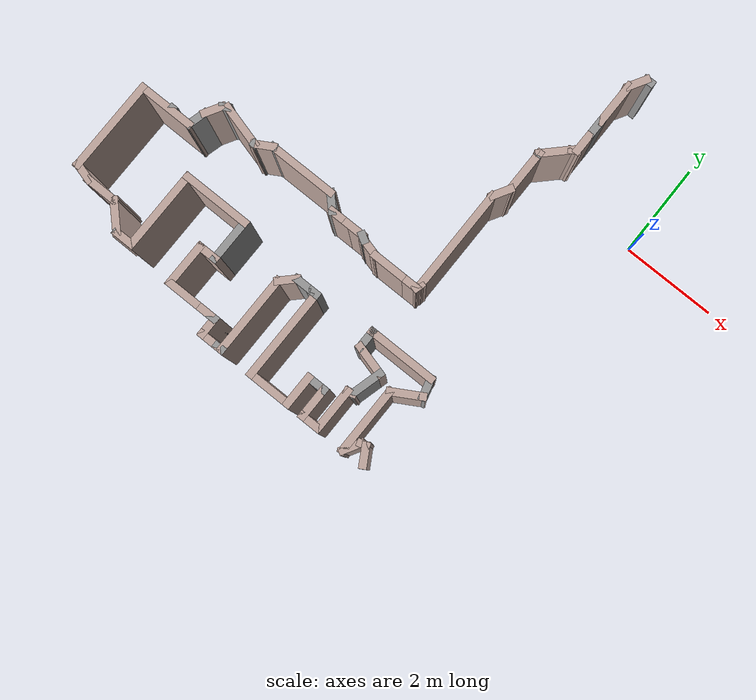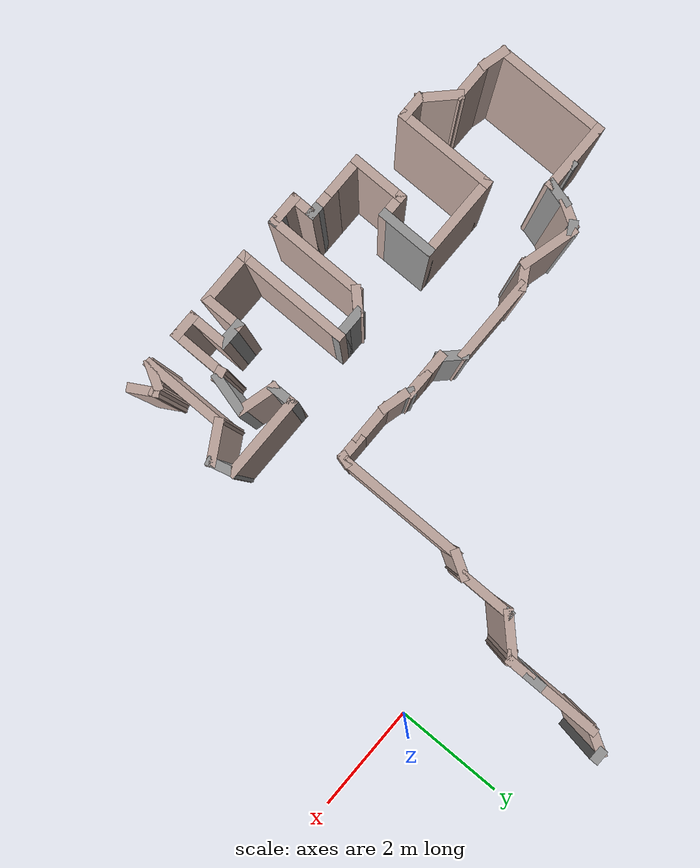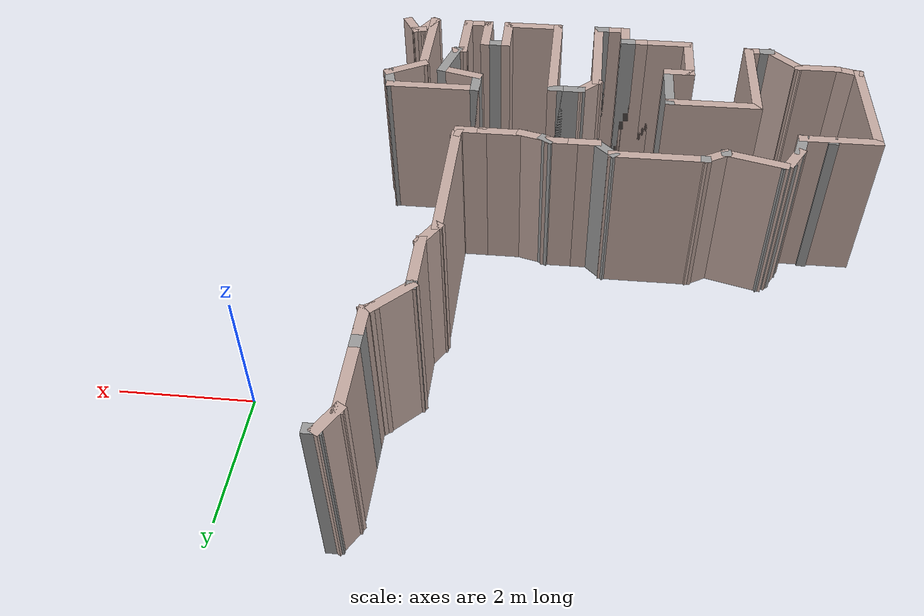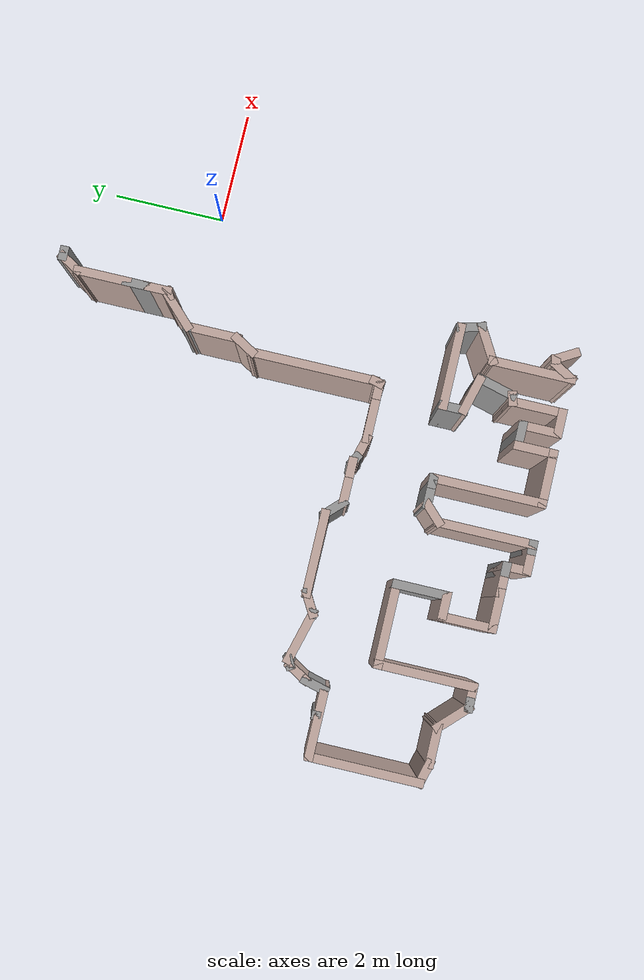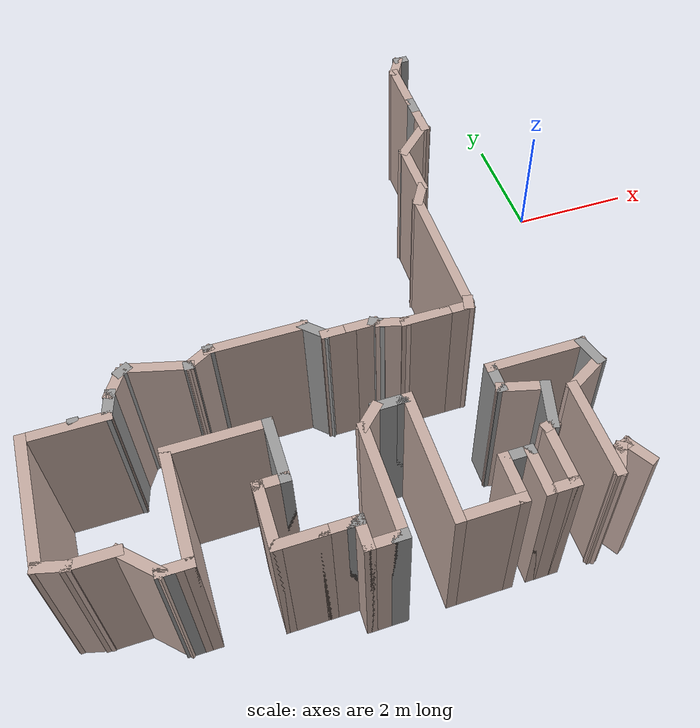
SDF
<sdf version="1.6">
 <model name="map_76">
  <pose>-2.40102 -2.21939 0 0 -0 0</pose>
  <link name="Wall_10">
   <collision name="Wall_10_Collision">
    <geometry><box><size>0.5 0.15 2.5</size></box></geometry>
    <pose>0 0 1.25 0 -0 0</pose>
   </collision>
   <visual name="Wall_10_Visual">
    <pose>0 0 1.25 0 -0 0</pose>
    <geometry><box><size>0.5 0.15 2.5</size></box></geometry>
    <material>
     <script><uri>file://media/materials/scripts/gazebo.material</uri><name>Gazebo/Grey</name></script>
     <ambient>0.760784 0.662745 0.627451 1</ambient>
    </material>
    <meta><layer>0</layer></meta>
   </visual>
   <pose>0.499907 2.74927 0 0 -0 -1.5708</pose>
  </link>
  <link name="Wall_11">
   <collision name="Wall_11_Collision">
    <geometry><box><size>0.25 0.15 2.5</size></box></geometry>
    <pose>0 0 1.25 0 -0 0</pose>
   </collision>
   <visual name="Wall_11_Visual">
    <pose>0 0 1.25 0 -0 0</pose>
    <geometry><box><size>0.25 0.15 2.5</size></box></geometry>
    <material>
     <script><uri>file://media/materials/scripts/gazebo.material</uri><name>Gazebo/Grey</name></script>
     <ambient>0.760784 0.662745 0.627451 1</ambient>
    </material>
    <meta><layer>0</layer></meta>
   </visual>
   <pose>0.456606 2.54927 0 0 -0 -2.61799</pose>
  </link>
  <link name="Wall_12">
   <collision name="Wall_12_Collision">
    <geometry><box><size>0.75 0.15 2.5</size></box></geometry>
    <pose>0 0 1.25 0 -0 0</pose>
   </collision>
   <visual name="Wall_12_Visual">
    <pose>0 0 1.25 0 -0 0</pose>
    <geometry><box><size>0.75 0.15 2.5</size></box></geometry>
    <material>
     <script><uri>file://media/materials/scripts/gazebo.material</uri><name>Gazebo/Grey</name></script>
     <ambient>0.760784 0.662745 0.627451 1</ambient>
    </material>
    <meta><layer>0</layer></meta>
   </visual>
   <pose>0.201173 2.31214 0 0 -0 -2.35619</pose>
  </link>
  <link name="Wall_13">
   <collision name="Wall_13_Collision">
    <geometry><box><size>0.15 0.15 2.5</size></box></geometry>
    <pose>0 0 1.25 0 -0 0</pose>
   </collision>
   <visual name="Wall_13_Visual">
    <pose>0 0 1.25 0 -0 0</pose>
    <geometry><box><size>0.15 0.15 2.5</size></box></geometry>
    <material>
     <script><uri>file://media/materials/scripts/gazebo.material</uri><name>Gazebo/Grey</name></script>
     <ambient>1 1 1 1</ambient>
    </material>
    <meta><layer>0</layer></meta>
   </visual>
   <pose>-0.010959 2.1 0 0 -0 0</pose>
  </link>
  <link name="Wall_14">
   <collision name="Wall_14_Collision">
    <geometry><box><size>1 0.15 2.5</size></box></geometry>
    <pose>0 0 1.25 0 -0 0</pose>
   </collision>
   <visual name="Wall_14_Visual">
    <pose>0 0 1.25 0 -0 0</pose>
    <geometry><box><size>1 0.15 2.5</size></box></geometry>
    <material>
     <script><uri>file://media/materials/scripts/gazebo.material</uri><name>Gazebo/Grey</name></script>
     <ambient>0.760784 0.662745 0.627451 1</ambient>
    </material>
    <meta><layer>0</layer></meta>
   </visual>
   <pose>-0.010959 1.675 0 0 -0 -1.5708</pose>
  </link>
  <link name="Wall_15">
   <collision name="Wall_15_Collision">
    <geometry><box><size>0.5 0.15 2.5</size></box></geometry>
    <pose>0 0 1.25 0 -0 0</pose>
   </collision>
   <visual name="Wall_15_Visual">
    <pose>0 0 1.25 0 -0 0</pose>
    <geometry><box><size>0.5 0.15 2.5</size></box></geometry>
    <material>
     <script><uri>file://media/materials/scripts/gazebo.material</uri><name>Gazebo/Grey</name></script>
     <ambient>0.760784 0.662745 0.627451 1</ambient>
    </material>
    <meta><layer>0</layer></meta>
   </visual>
   <pose>-0.098459 1.09845 0 0 -0 -2.0944</pose>
  </link>
  <link name="Wall_16">
   <collision name="Wall_16_Collision">
    <geometry><box><size>2.25 0.15 2.5</size></box></geometry>
    <pose>0 0 1.25 0 -0 0</pose>
   </collision>
   <visual name="Wall_16_Visual">
    <pose>0 0 1.25 0 -0 0</pose>
    <geometry><box><size>2.25 0.15 2.5</size></box></geometry>
    <material>
     <script><uri>file://media/materials/scripts/gazebo.material</uri><name>Gazebo/Grey</name></script>
     <ambient>0.760784 0.662745 0.627451 1</ambient>
    </material>
    <meta><layer>0</layer></meta>
   </visual>
   <pose>-0.185959 -0.103106 0 0 -0 -1.5708</pose>
  </link>
  <link name="Wall_17">
   <collision name="Wall_17_Collision">
    <geometry><box><size>0.25 0.15 2.5</size></box></geometry>
    <pose>0 0 1.25 0 -0 0</pose>
   </collision>
   <visual name="Wall_17_Visual">
    <pose>0 0 1.25 0 -0 0</pose>
    <geometry><box><size>0.25 0.15 2.5</size></box></geometry>
    <material>
     <script><uri>file://media/materials/scripts/gazebo.material</uri><name>Gazebo/Grey</name></script>
     <ambient>0.760784 0.662745 0.627451 1</ambient>
    </material>
    <meta><layer>0</layer></meta>
   </visual>
   <pose>-0.1989 -1.2014 0 0 -0 -1.8326</pose>
  </link>
  <link name="Wall_18">
   <collision name="Wall_18_Collision">
    <geometry><box><size>0.5 0.15 2.5</size></box></geometry>
    <pose>0 0 1.25 0 -0 0</pose>
   </collision>
   <visual name="Wall_18_Visual">
    <pose>0 0 1.25 0 -0 0</pose>
    <geometry><box><size>0.5 0.15 2.5</size></box></geometry>
    <material>
     <script><uri>file://media/materials/scripts/gazebo.material</uri><name>Gazebo/Grey</name></script>
     <ambient>0.760784 0.662745 0.627451 1</ambient>
    </material>
    <meta><layer>0</layer></meta>
   </visual>
   <pose>-0.386841 -1.2497 0 0 -0 3.14159</pose>
  </link>
  <link name="Wall_19">
   <collision name="Wall_19_Collision">
    <geometry><box><size>0.75 0.15 2.5</size></box></geometry>
    <pose>0 0 1.25 0 -0 0</pose>
   </collision>
   <visual name="Wall_19_Visual">
    <pose>0 0 1.25 0 -0 0</pose>
    <geometry><box><size>0.75 0.15 2.5</size></box></geometry>
    <material>
     <script><uri>file://media/materials/scripts/gazebo.material</uri><name>Gazebo/Grey</name></script>
     <ambient>0.760784 0.662745 0.627451 1</ambient>
    </material>
    <meta><layer>0</layer></meta>
   </visual>
   <pose>-0.861841 -1.2497 0 0 -0 3.14159</pose>
  </link>
  <link name="Wall_20">
   <collision name="Wall_20_Collision">
    <geometry><box><size>0.5 0.15 2.5</size></box></geometry>
    <pose>0 0 1.25 0 -0 0</pose>
   </collision>
   <visual name="Wall_20_Visual">
    <pose>0 0 1.25 0 -0 0</pose>
    <geometry><box><size>0.5 0.15 2.5</size></box></geometry>
    <material>
     <script><uri>file://media/materials/scripts/gazebo.material</uri><name>Gazebo/Grey</name></script>
     <ambient>0.760784 0.662745 0.627451 1</ambient>
    </material>
    <meta><layer>0</layer></meta>
   </visual>
   <pose>-1.33088 -1.2044 0 0 -0 2.87979</pose>
  </link>
  <link name="Wall_21">
   <collision name="Wall_21_Collision">
    <geometry><box><size>0.25 0.15 2.5</size></box></geometry>
    <pose>0 0 1.25 0 -0 0</pose>
   </collision>
   <visual name="Wall_21_Visual">
    <pose>0 0 1.25 0 -0 0</pose>
    <geometry><box><size>0.25 0.15 2.5</size></box></geometry>
    <material>
     <script><uri>file://media/materials/scripts/gazebo.material</uri><name>Gazebo/Grey</name></script>
     <ambient>1 1 1 1</ambient>
    </material>
    <meta><layer>0</layer></meta>
   </visual>
   <pose>-1.54322 -1.13411 0 0 -0 2.61799</pose>
  </link>
  <link name="Wall_22">
   <collision name="Wall_22_Collision">
    <geometry><box><size>0.5 0.15 2.5</size></box></geometry>
    <pose>0 0 1.25 0 -0 0</pose>
   </collision>
   <visual name="Wall_22_Visual">
    <pose>0 0 1.25 0 -0 0</pose>
    <geometry><box><size>0.5 0.15 2.5</size></box></geometry>
    <material>
     <script><uri>file://media/materials/scripts/gazebo.material</uri><name>Gazebo/Grey</name></script>
     <ambient>0.760784 0.662745 0.627451 1</ambient>
    </material>
    <meta><layer>0</layer></meta>
   </visual>
   <pose>-1.76152 -1.10911 0 0 -0 3.14159</pose>
  </link>
  <link name="Wall_23">
   <collision name="Wall_23_Collision">
    <geometry><box><size>0.5 0.15 2.5</size></box></geometry>
    <pose>0 0 1.25 0 -0 0</pose>
   </collision>
   <visual name="Wall_23_Visual">
    <pose>0 0 1.25 0 -0 0</pose>
    <geometry><box><size>0.5 0.15 2.5</size></box></geometry>
    <material>
     <script><uri>file://media/materials/scripts/gazebo.material</uri><name>Gazebo/Grey</name></script>
     <ambient>0.760784 0.662745 0.627451 1</ambient>
    </material>
    <meta><layer>0</layer></meta>
   </visual>
   <pose>-2.11152 -1.10911 0 0 -0 3.14159</pose>
  </link>
  <link name="Wall_24">
   <collision name="Wall_24_Collision">
    <geometry><box><size>0.5 0.15 2.5</size></box></geometry>
    <pose>0 0 1.25 0 -0 0</pose>
   </collision>
   <visual name="Wall_24_Visual">
    <pose>0 0 1.25 0 -0 0</pose>
    <geometry><box><size>0.5 0.15 2.5</size></box></geometry>
    <material>
     <script><uri>file://media/materials/scripts/gazebo.material</uri><name>Gazebo/Grey</name></script>
     <ambient>1 1 1 1</ambient>
    </material>
    <meta><layer>0</layer></meta>
   </visual>
   <pose>-2.41026 -0.985368 0 0 -0 2.35619</pose>
  </link>
  <link name="Wall_25">
   <collision name="Wall_25_Collision">
    <geometry><box><size>1.5 0.15 2.5</size></box></geometry>
    <pose>0 0 1.25 0 -0 0</pose>
   </collision>
   <visual name="Wall_25_Visual">
    <pose>0 0 1.25 0 -0 0</pose>
    <geometry><box><size>1.5 0.15 2.5</size></box></geometry>
    <material>
     <script><uri>file://media/materials/scripts/gazebo.material</uri><name>Gazebo/Grey</name></script>
     <ambient>0.760784 0.662745 0.627451 1</ambient>
    </material>
    <meta><layer>0</layer></meta>
   </visual>
   <pose>-3.209 -0.861625 0 0 -0 3.14159</pose>
  </link>
  <link name="Wall_26">
   <collision name="Wall_26_Collision">
    <geometry><box><size>0.15 0.15 2.5</size></box></geometry>
    <pose>0 0 1.25 0 -0 0</pose>
   </collision>
   <visual name="Wall_26_Visual">
    <pose>0 0 1.25 0 -0 0</pose>
    <geometry><box><size>0.15 0.15 2.5</size></box></geometry>
    <material>
     <script><uri>file://media/materials/scripts/gazebo.material</uri><name>Gazebo/Grey</name></script>
     <ambient>1 1 1 1</ambient>
    </material>
    <meta><layer>0</layer></meta>
   </visual>
   <pose>-3.88401 -0.861625 0 0 -0 0</pose>
  </link>
  <link name="Wall_27">
   <collision name="Wall_27_Collision">
    <geometry><box><size>0.5 0.15 2.5</size></box></geometry>
    <pose>0 0 1.25 0 -0 0</pose>
   </collision>
   <visual name="Wall_27_Visual">
    <pose>0 0 1.25 0 -0 0</pose>
    <geometry><box><size>0.5 0.15 2.5</size></box></geometry>
    <material>
     <script><uri>file://media/materials/scripts/gazebo.material</uri><name>Gazebo/Grey</name></script>
     <ambient>0.760784 0.662745 0.627451 1</ambient>
    </material>
    <meta><layer>0</layer></meta>
   </visual>
   <pose>-4.03556 -0.949125 0 0 -0 -2.61799</pose>
  </link>
  <link name="Wall_28">
   <collision name="Wall_28_Collision">
    <geometry><box><size>0.15 0.15 2.5</size></box></geometry>
    <pose>0 0 1.25 0 -0 0</pose>
   </collision>
   <visual name="Wall_28_Visual">
    <pose>0 0 1.25 0 -0 0</pose>
    <geometry><box><size>0.15 0.15 2.5</size></box></geometry>
    <material>
     <script><uri>file://media/materials/scripts/gazebo.material</uri><name>Gazebo/Grey</name></script>
     <ambient>1 1 1 1</ambient>
    </material>
    <meta><layer>0</layer></meta>
   </visual>
   <pose>-4.18711 -1.03662 0 0 -0 0</pose>
  </link>
  <link name="Wall_29">
   <collision name="Wall_29_Collision">
    <geometry><box><size>1 0.15 2.5</size></box></geometry>
    <pose>0 0 1.25 0 -0 0</pose>
   </collision>
   <visual name="Wall_29_Visual">
    <pose>0 0 1.25 0 -0 0</pose>
    <geometry><box><size>1 0.15 2.5</size></box></geometry>
    <material>
     <script><uri>file://media/materials/scripts/gazebo.material</uri><name>Gazebo/Grey</name></script>
     <ambient>0.760784 0.662745 0.627451 1</ambient>
    </material>
    <meta><layer>0</layer></meta>
   </visual>
   <pose>-4.59763 -0.926627 0 0 -0 2.87979</pose>
  </link>
  <link name="Wall_30">
   <collision name="Wall_30_Collision">
    <geometry><box><size>0.25 0.15 2.5</size></box></geometry>
    <pose>0 0 1.25 0 -0 0</pose>
   </collision>
   <visual name="Wall_30_Visual">
    <pose>0 0 1.25 0 -0 0</pose>
    <geometry><box><size>0.25 0.15 2.5</size></box></geometry>
    <material>
     <script><uri>file://media/materials/scripts/gazebo.material</uri><name>Gazebo/Grey</name></script>
     <ambient>1 1 1 1</ambient>
    </material>
    <meta><layer>0</layer></meta>
   </visual>
   <pose>-5.05145 -0.841629 0 0 -0 -2.61799</pose>
  </link>
  <link name="Wall_31">
   <collision name="Wall_31_Collision">
    <geometry><box><size>0.5 0.15 2.5</size></box></geometry>
    <pose>0 0 1.25 0 -0 0</pose>
   </collision>
   <visual name="Wall_31_Visual">
    <pose>0 0 1.25 0 -0 0</pose>
    <geometry><box><size>0.5 0.15 2.5</size></box></geometry>
    <material>
     <script><uri>file://media/materials/scripts/gazebo.material</uri><name>Gazebo/Grey</name></script>
     <ambient>0.760784 0.662745 0.627451 1</ambient>
    </material>
    <meta><layer>0</layer></meta>
   </visual>
   <pose>-5.18225 -1.01818 0 0 -0 -2.0944</pose>
  </link>
  <link name="Wall_33">
   <collision name="Wall_33_Collision">
    <geometry><box><size>0.15 0.15 2.5</size></box></geometry>
    <pose>0 0 1.25 0 -0 0</pose>
   </collision>
   <visual name="Wall_33_Visual">
    <pose>0 0 1.25 0 -0 0</pose>
    <geometry><box><size>0.15 0.15 2.5</size></box></geometry>
    <material>
     <script><uri>file://media/materials/scripts/gazebo.material</uri><name>Gazebo/Grey</name></script>
     <ambient>1 1 1 1</ambient>
    </material>
    <meta><layer>0</layer></meta>
   </visual>
   <pose>-5.78937 -1.46974 0 0 -0 0</pose>
  </link>
  <link name="Wall_37">
   <collision name="Wall_37_Collision">
    <geometry><box><size>0.5 0.15 2.5</size></box></geometry>
    <pose>0 0 1.25 0 -0 0</pose>
   </collision>
   <visual name="Wall_37_Visual">
    <pose>0 0 1.25 0 -0 0</pose>
    <geometry><box><size>0.5 0.15 2.5</size></box></geometry>
    <material>
     <script><uri>file://media/materials/scripts/gazebo.material</uri><name>Gazebo/Grey</name></script>
     <ambient>1 1 1 1</ambient>
    </material>
    <meta><layer>0</layer></meta>
   </visual>
   <pose>-5.31505 -1.33877 0 0 -0 -1.8326</pose>
  </link>
  <link name="Wall_38">
   <collision name="Wall_38_Collision">
    <geometry><box><size>1.25 0.15 2.5</size></box></geometry>
    <pose>0 0 1.25 0 -0 0</pose>
   </collision>
   <visual name="Wall_38_Visual">
    <pose>0 0 1.25 0 -0 0</pose>
    <geometry><box><size>1.25 0.15 2.5</size></box></geometry>
    <material>
     <script><uri>file://media/materials/scripts/gazebo.material</uri><name>Gazebo/Grey</name></script>
     <ambient>0.760784 0.662745 0.627451 1</ambient>
    </material>
    <meta><layer>0</layer></meta>
   </visual>
   <pose>-5.91034 -1.50781 0 0 -0 3.14159</pose>
  </link>
  <link name="Wall_39">
   <collision name="Wall_39_Collision">
    <geometry><box><size>2 0.15 2.5</size></box></geometry>
    <pose>0 0 1.25 0 -0 0</pose>
   </collision>
   <visual name="Wall_39_Visual">
    <pose>0 0 1.25 0 -0 0</pose>
    <geometry><box><size>2 0.15 2.5</size></box></geometry>
    <material>
     <script><uri>file://media/materials/scripts/gazebo.material</uri><name>Gazebo/Grey</name></script>
     <ambient>0.760784 0.662745 0.627451 1</ambient>
    </material>
    <meta><layer>0</layer></meta>
   </visual>
   <pose>-6.46034 -2.43281 0 0 -0 -1.5708</pose>
  </link>
  <link name="Wall_40">
   <collision name="Wall_40_Collision">
    <geometry><box><size>0.5 0.15 2.5</size></box></geometry>
    <pose>0 0 1.25 0 -0 0</pose>
   </collision>
   <visual name="Wall_40_Visual">
    <pose>0 0 1.25 0 -0 0</pose>
    <geometry><box><size>0.5 0.15 2.5</size></box></geometry>
    <material>
     <script><uri>file://media/materials/scripts/gazebo.material</uri><name>Gazebo/Grey</name></script>
     <ambient>0.760784 0.662745 0.627451 1</ambient>
    </material>
    <meta><layer>0</layer></meta>
   </visual>
   <pose>-6.2913 -3.40311 0 0 -0 -0.261799</pose>
  </link>
  <link name="Wall_41">
   <collision name="Wall_41_Collision">
    <geometry><box><size>0.75 0.15 2.5</size></box></geometry>
    <pose>0 0 1.25 0 -0 0</pose>
   </collision>
   <visual name="Wall_41_Visual">
    <pose>0 0 1.25 0 -0 0</pose>
    <geometry><box><size>0.75 0.15 2.5</size></box></geometry>
    <material>
     <script><uri>file://media/materials/scripts/gazebo.material</uri><name>Gazebo/Grey</name></script>
     <ambient>0.760784 0.662745 0.627451 1</ambient>
    </material>
    <meta><layer>0</layer></meta>
   </visual>
   <pose>-5.82227 -3.4484 0 0 -0 0</pose>
  </link>
  <link name="Wall_42">
   <collision name="Wall_42_Collision">
    <geometry><box><size>0.75 0.15 2.5</size></box></geometry>
    <pose>0 0 1.25 0 -0 0</pose>
   </collision>
   <visual name="Wall_42_Visual">
    <pose>0 0 1.25 0 -0 0</pose>
    <geometry><box><size>0.75 0.15 2.5</size></box></geometry>
    <material>
     <script><uri>file://media/materials/scripts/gazebo.material</uri><name>Gazebo/Grey</name></script>
     <ambient>0.760784 0.662745 0.627451 1</ambient>
    </material>
    <meta><layer>0</layer></meta>
   </visual>
   <pose>-5.31013 -3.66053 0 0 -0 -0.785398</pose>
  </link>
  <link name="Wall_43">
   <collision name="Wall_43_Collision">
    <geometry><box><size>0.25 0.15 2.5</size></box></geometry>
    <pose>0 0 1.25 0 -0 0</pose>
   </collision>
   <visual name="Wall_43_Visual">
    <pose>0 0 1.25 0 -0 0</pose>
    <geometry><box><size>0.25 0.15 2.5</size></box></geometry>
    <material>
     <script><uri>file://media/materials/scripts/gazebo.material</uri><name>Gazebo/Grey</name></script>
     <ambient>1 1 1 1</ambient>
    </material>
    <meta><layer>0</layer></meta>
   </visual>
   <pose>-5.048 -3.87266 0 0 -0 0</pose>
  </link>
  <link name="Wall_45">
   <collision name="Wall_45_Collision">
    <geometry><box><size>0.5 0.15 2.5</size></box></geometry>
    <pose>0 0 1.25 0 -0 0</pose>
   </collision>
   <visual name="Wall_45_Visual">
    <pose>0 0 1.25 0 -0 0</pose>
    <geometry><box><size>0.5 0.15 2.5</size></box></geometry>
    <material>
     <script><uri>file://media/materials/scripts/gazebo.material</uri><name>Gazebo/Grey</name></script>
     <ambient>0.760784 0.662745 0.627451 1</ambient>
    </material>
    <meta><layer>0</layer></meta>
   </visual>
   <pose>-4.923 -3.87266 0 0 -0 0</pose>
  </link>
  <link name="Wall_46">
   <collision name="Wall_46_Collision">
    <geometry><box><size>1.75 0.15 2.5</size></box></geometry>
    <pose>0 0 1.25 0 -0 0</pose>
   </collision>
   <visual name="Wall_46_Visual">
    <pose>0 0 1.25 0 -0 0</pose>
    <geometry><box><size>1.75 0.15 2.5</size></box></geometry>
    <material>
     <script><uri>file://media/materials/scripts/gazebo.material</uri><name>Gazebo/Grey</name></script>
     <ambient>0.760784 0.662745 0.627451 1</ambient>
    </material>
    <meta><layer>0</layer></meta>
   </visual>
   <pose>-4.748 -3.07266 0 0 -0 1.5708</pose>
  </link>
  <link name="Wall_47">
   <collision name="Wall_47_Collision">
    <geometry><box><size>1.5 0.15 2.5</size></box></geometry>
    <pose>0 0 1.25 0 -0 0</pose>
   </collision>
   <visual name="Wall_47_Visual">
    <pose>0 0 1.25 0 -0 0</pose>
    <geometry><box><size>1.5 0.15 2.5</size></box></geometry>
    <material>
     <script><uri>file://media/materials/scripts/gazebo.material</uri><name>Gazebo/Grey</name></script>
     <ambient>0.760784 0.662745 0.627451 1</ambient>
    </material>
    <meta><layer>0</layer></meta>
   </visual>
   <pose>-4.073 -2.27266 0 0 -0 0</pose>
  </link>
  <link name="Wall_48">
   <collision name="Wall_48_Collision">
    <geometry><box><size>1 0.15 2.5</size></box></geometry>
    <pose>0 0 1.25 0 -0 0</pose>
   </collision>
   <visual name="Wall_48_Visual">
    <pose>0 0 1.25 0 -0 0</pose>
    <geometry><box><size>1 0.15 2.5</size></box></geometry>
    <material>
     <script><uri>file://media/materials/scripts/gazebo.material</uri><name>Gazebo/Grey</name></script>
     <ambient>1 1 1 1</ambient>
    </material>
    <meta><layer>0</layer></meta>
   </visual>
   <pose>-3.398 -2.69766 0 0 -0 -1.5708</pose>
  </link>
  <link name="Wall_49">
   <collision name="Wall_49_Collision">
    <geometry><box><size>0.5 0.15 2.5</size></box></geometry>
    <pose>0 0 1.25 0 -0 0</pose>
   </collision>
   <visual name="Wall_49_Visual">
    <pose>0 0 1.25 0 -0 0</pose>
    <geometry><box><size>0.5 0.15 2.5</size></box></geometry>
    <material>
     <script><uri>file://media/materials/scripts/gazebo.material</uri><name>Gazebo/Grey</name></script>
     <ambient>0.760784 0.662745 0.627451 1</ambient>
    </material>
    <meta><layer>0</layer></meta>
   </visual>
   <pose>-3.573 -3.12266 0 0 -0 3.14159</pose>
  </link>
  <link name="Wall_50">
   <collision name="Wall_50_Collision">
    <geometry><box><size>1 0.15 2.5</size></box></geometry>
    <pose>0 0 1.25 0 -0 0</pose>
   </collision>
   <visual name="Wall_50_Visual">
    <pose>0 0 1.25 0 -0 0</pose>
    <geometry><box><size>1 0.15 2.5</size></box></geometry>
    <material>
     <script><uri>file://media/materials/scripts/gazebo.material</uri><name>Gazebo/Grey</name></script>
     <ambient>0.760784 0.662745 0.627451 1</ambient>
    </material>
    <meta><layer>0</layer></meta>
   </visual>
   <pose>-3.748 -3.54766 0 0 -0 -1.5708</pose>
  </link>
  <link name="Wall_51">
   <collision name="Wall_51_Collision">
    <geometry><box><size>0.75 0.15 2.5</size></box></geometry>
    <pose>0 0 1.25 0 -0 0</pose>
   </collision>
   <visual name="Wall_51_Visual">
    <pose>0 0 1.25 0 -0 0</pose>
    <geometry><box><size>0.75 0.15 2.5</size></box></geometry>
    <material>
     <script><uri>file://media/materials/scripts/gazebo.material</uri><name>Gazebo/Grey</name></script>
     <ambient>0.760784 0.662745 0.627451 1</ambient>
    </material>
    <meta><layer>0</layer></meta>
   </visual>
   <pose>-3.448 -3.97266 0 0 -0 0</pose>
  </link>
  <link name="Wall_52">
   <collision name="Wall_52_Collision">
    <geometry><box><size>0.5 0.15 2.5</size></box></geometry>
    <pose>0 0 1.25 0 -0 0</pose>
   </collision>
   <visual name="Wall_52_Visual">
    <pose>0 0 1.25 0 -0 0</pose>
    <geometry><box><size>0.5 0.15 2.5</size></box></geometry>
    <material>
     <script><uri>file://media/materials/scripts/gazebo.material</uri><name>Gazebo/Grey</name></script>
     <ambient>0.760784 0.662745 0.627451 1</ambient>
    </material>
    <meta><layer>0</layer></meta>
   </visual>
   <pose>-2.973 -3.97266 0 0 -0 0</pose>
  </link>
  <link name="Wall_53">
   <collision name="Wall_53_Collision">
    <geometry><box><size>0.25 0.15 2.5</size></box></geometry>
    <pose>0 0 1.25 0 -0 0</pose>
   </collision>
   <visual name="Wall_53_Visual">
    <pose>0 0 1.25 0 -0 0</pose>
    <geometry><box><size>0.25 0.15 2.5</size></box></geometry>
    <material>
     <script><uri>file://media/materials/scripts/gazebo.material</uri><name>Gazebo/Grey</name></script>
     <ambient>1 1 1 1</ambient>
    </material>
    <meta><layer>0</layer></meta>
   </visual>
   <pose>-2.748 -3.97266 0 0 -0 0</pose>
  </link>
  <link name="Wall_54">
   <collision name="Wall_54_Collision">
    <geometry><box><size>0.5 0.15 2.5</size></box></geometry>
    <pose>0 0 1.25 0 -0 0</pose>
   </collision>
   <visual name="Wall_54_Visual">
    <pose>0 0 1.25 0 -0 0</pose>
    <geometry><box><size>0.5 0.15 2.5</size></box></geometry>
    <material>
     <script><uri>file://media/materials/scripts/gazebo.material</uri><name>Gazebo/Grey</name></script>
     <ambient>0.760784 0.662745 0.627451 1</ambient>
    </material>
    <meta><layer>0</layer></meta>
   </visual>
   <pose>-2.698 -4.14766 0 0 -0 -1.5708</pose>
  </link>
  <link name="Wall_55">
   <collision name="Wall_55_Collision">
    <geometry><box><size>0.5 0.15 2.5</size></box></geometry>
    <pose>0 0 1.25 0 -0 0</pose>
   </collision>
   <visual name="Wall_55_Visual">
    <pose>0 0 1.25 0 -0 0</pose>
    <geometry><box><size>0.5 0.15 2.5</size></box></geometry>
    <material>
     <script><uri>file://media/materials/scripts/gazebo.material</uri><name>Gazebo/Grey</name></script>
     <ambient>0.760784 0.662745 0.627451 1</ambient>
    </material>
    <meta><layer>0</layer></meta>
   </visual>
   <pose>-2.523 -4.32266 0 0 -0 0</pose>
  </link>
  <link name="Wall_56">
   <collision name="Wall_56_Collision">
    <geometry><box><size>0.25 0.15 2.5</size></box></geometry>
    <pose>0 0 1.25 0 -0 0</pose>
   </collision>
   <visual name="Wall_56_Visual">
    <pose>0 0 1.25 0 -0 0</pose>
    <geometry><box><size>0.25 0.15 2.5</size></box></geometry>
    <material>
     <script><uri>file://media/materials/scripts/gazebo.material</uri><name>Gazebo/Grey</name></script>
     <ambient>1 1 1 1</ambient>
    </material>
    <meta><layer>0</layer></meta>
   </visual>
   <pose>-2.298 -4.32266 0 0 -0 0</pose>
  </link>
  <link name="Wall_57">
   <collision name="Wall_57_Collision">
    <geometry><box><size>1.75 0.15 2.5</size></box></geometry>
    <pose>0 0 1.25 0 -0 0</pose>
   </collision>
   <visual name="Wall_57_Visual">
    <pose>0 0 1.25 0 -0 0</pose>
    <geometry><box><size>1.75 0.15 2.5</size></box></geometry>
    <material>
     <script><uri>file://media/materials/scripts/gazebo.material</uri><name>Gazebo/Grey</name></script>
     <ambient>0.760784 0.662745 0.627451 1</ambient>
    </material>
    <meta><layer>0</layer></meta>
   </visual>
   <pose>-2.248 -3.52266 0 0 -0 1.5708</pose>
  </link>
  <link name="Wall_58">
   <collision name="Wall_58_Collision">
    <geometry><box><size>0.5 0.15 2.5</size></box></geometry>
    <pose>0 0 1.25 0 -0 0</pose>
   </collision>
   <visual name="Wall_58_Visual">
    <pose>0 0 1.25 0 -0 0</pose>
    <geometry><box><size>0.5 0.15 2.5</size></box></geometry>
    <material>
     <script><uri>file://media/materials/scripts/gazebo.material</uri><name>Gazebo/Grey</name></script>
     <ambient>0.760784 0.662745 0.627451 1</ambient>
    </material>
    <meta><layer>0</layer></meta>
   </visual>
   <pose>-2.12426 -2.59892 0 0 -0 0.785398</pose>
  </link>
  <link name="Wall_59">
   <collision name="Wall_59_Collision">
    <geometry><box><size>0.5 0.15 2.5</size></box></geometry>
    <pose>0 0 1.25 0 -0 0</pose>
   </collision>
   <visual name="Wall_59_Visual">
    <pose>0 0 1.25 0 -0 0</pose>
    <geometry><box><size>0.5 0.15 2.5</size></box></geometry>
    <material>
     <script><uri>file://media/materials/scripts/gazebo.material</uri><name>Gazebo/Grey</name></script>
     <ambient>1 1 1 1</ambient>
    </material>
    <meta><layer>0</layer></meta>
   </visual>
   <pose>-1.82551 -2.47518 0 0 -0 0</pose>
  </link>
  <link name="Wall_6">
   <collision name="Wall_6_Collision">
    <geometry><box><size>0.25 0.15 2.5</size></box></geometry>
    <pose>0 0 1.25 0 -0 0</pose>
   </collision>
   <visual name="Wall_6_Visual">
    <pose>0 0 1.25 0 -0 0</pose>
    <geometry><box><size>0.25 0.15 2.5</size></box></geometry>
    <material>
     <script><uri>file://media/materials/scripts/gazebo.material</uri><name>Gazebo/Grey</name></script>
     <ambient>1 1 1 1</ambient>
    </material>
    <meta><layer>0</layer></meta>
   </visual>
   <pose>0.724907 4.42738 0 0 -0 3.14159</pose>
  </link>
  <link name="Wall_60">
   <collision name="Wall_60_Collision">
    <geometry><box><size>0.25 0.15 2.5</size></box></geometry>
    <pose>0 0 1.25 0 -0 0</pose>
   </collision>
   <visual name="Wall_60_Visual">
    <pose>0 0 1.25 0 -0 0</pose>
    <geometry><box><size>0.25 0.15 2.5</size></box></geometry>
    <material>
     <script><uri>file://media/materials/scripts/gazebo.material</uri><name>Gazebo/Grey</name></script>
     <ambient>1 1 1 1</ambient>
    </material>
    <meta><layer>0</layer></meta>
   </visual>
   <pose>-1.60051 -2.47518 0 0 -0 0</pose>
  </link>
  <link name="Wall_61">
   <collision name="Wall_61_Collision">
    <geometry><box><size>2 0.15 2.5</size></box></geometry>
    <pose>0 0 1.25 0 -0 0</pose>
   </collision>
   <visual name="Wall_61_Visual">
    <pose>0 0 1.25 0 -0 0</pose>
    <geometry><box><size>2 0.15 2.5</size></box></geometry>
    <material>
     <script><uri>file://media/materials/scripts/gazebo.material</uri><name>Gazebo/Grey</name></script>
     <ambient>0.760784 0.662745 0.627451 1</ambient>
    </material>
    <meta><layer>0</layer></meta>
   </visual>
   <pose>-1.55052 -3.40017 0 0 -0 -1.5708</pose>
  </link>
  <link name="Wall_62">
   <collision name="Wall_62_Collision">
    <geometry><box><size>1 0.15 2.5</size></box></geometry>
    <pose>0 0 1.25 0 -0 0</pose>
   </collision>
   <visual name="Wall_62_Visual">
    <pose>0 0 1.25 0 -0 0</pose>
    <geometry><box><size>1 0.15 2.5</size></box></geometry>
    <material>
     <script><uri>file://media/materials/scripts/gazebo.material</uri><name>Gazebo/Grey</name></script>
     <ambient>0.760784 0.662745 0.627451 1</ambient>
    </material>
    <meta><layer>0</layer></meta>
   </visual>
   <pose>-1.12552 -4.32517 0 0 -0 0</pose>
  </link>
  <link name="Wall_63">
   <collision name="Wall_63_Collision">
    <geometry><box><size>0.75 0.15 2.5</size></box></geometry>
    <pose>0 0 1.25 0 -0 0</pose>
   </collision>
   <visual name="Wall_63_Visual">
    <pose>0 0 1.25 0 -0 0</pose>
    <geometry><box><size>0.75 0.15 2.5</size></box></geometry>
    <material>
     <script><uri>file://media/materials/scripts/gazebo.material</uri><name>Gazebo/Grey</name></script>
     <ambient>0.760784 0.662745 0.627451 1</ambient>
    </material>
    <meta><layer>0</layer></meta>
   </visual>
   <pose>-0.700515 -4.02517 0 0 -0 1.5708</pose>
  </link>
  <link name="Wall_64">
   <collision name="Wall_64_Collision">
    <geometry><box><size>0.5 0.15 2.5</size></box></geometry>
    <pose>0 0 1.25 0 -0 0</pose>
   </collision>
   <visual name="Wall_64_Visual">
    <pose>0 0 1.25 0 -0 0</pose>
    <geometry><box><size>0.5 0.15 2.5</size></box></geometry>
    <material>
     <script><uri>file://media/materials/scripts/gazebo.material</uri><name>Gazebo/Grey</name></script>
     <ambient>1 1 1 1</ambient>
    </material>
    <meta><layer>0</layer></meta>
   </visual>
   <pose>-0.525515 -3.72518 0 0 -0 0</pose>
  </link>
  <link name="Wall_65">
   <collision name="Wall_65_Collision">
    <geometry><box><size>0.75 0.15 2.5</size></box></geometry>
    <pose>0 0 1.25 0 -0 0</pose>
   </collision>
   <visual name="Wall_65_Visual">
    <pose>0 0 1.25 0 -0 0</pose>
    <geometry><box><size>0.75 0.15 2.5</size></box></geometry>
    <material>
     <script><uri>file://media/materials/scripts/gazebo.material</uri><name>Gazebo/Grey</name></script>
     <ambient>0.760784 0.662745 0.627451 1</ambient>
    </material>
    <meta><layer>0</layer></meta>
   </visual>
   <pose>-0.350515 -4.02517 0 0 -0 -1.5708</pose>
  </link>
  <link name="Wall_66">
   <collision name="Wall_66_Collision">
    <geometry><box><size>0.5 0.15 2.5</size></box></geometry>
    <pose>0 0 1.25 0 -0 0</pose>
   </collision>
   <visual name="Wall_66_Visual">
    <pose>0 0 1.25 0 -0 0</pose>
    <geometry><box><size>0.5 0.15 2.5</size></box></geometry>
    <material>
     <script><uri>file://media/materials/scripts/gazebo.material</uri><name>Gazebo/Grey</name></script>
     <ambient>0.760784 0.662745 0.627451 1</ambient>
    </material>
    <meta><layer>0</layer></meta>
   </visual>
   <pose>-0.175515 -4.32517 0 0 -0 0</pose>
  </link>
  <link name="Wall_67">
   <collision name="Wall_67_Collision">
    <geometry><box><size>1 0.15 2.5</size></box></geometry>
    <pose>0 0 1.25 0 -0 0</pose>
   </collision>
   <visual name="Wall_67_Visual">
    <pose>0 0 1.25 0 -0 0</pose>
    <geometry><box><size>1 0.15 2.5</size></box></geometry>
    <material>
     <script><uri>file://media/materials/scripts/gazebo.material</uri><name>Gazebo/Grey</name></script>
     <ambient>0.760784 0.662745 0.627451 1</ambient>
    </material>
    <meta><layer>0</layer></meta>
   </visual>
   <pose>-0.000515 -3.90017 0 0 -0 1.5708</pose>
  </link>
  <link name="Wall_68">
   <collision name="Wall_68_Collision">
    <geometry><box><size>0.25 0.15 2.5</size></box></geometry>
    <pose>0 0 1.25 0 -0 0</pose>
   </collision>
   <visual name="Wall_68_Visual">
    <pose>0 0 1.25 0 -0 0</pose>
    <geometry><box><size>0.25 0.15 2.5</size></box></geometry>
    <material>
     <script><uri>file://media/materials/scripts/gazebo.material</uri><name>Gazebo/Grey</name></script>
     <ambient>0.760784 0.662745 0.627451 1</ambient>
    </material>
    <meta><layer>0</layer></meta>
   </visual>
   <pose>0.047781 -3.46223 0 0 -0 0.261799</pose>
  </link>
  <link name="Wall_69">
   <collision name="Wall_69_Collision">
    <geometry><box><size>0.75 0.15 2.5</size></box></geometry>
    <pose>0 0 1.25 0 -0 0</pose>
   </collision>
   <visual name="Wall_69_Visual">
    <pose>0 0 1.25 0 -0 0</pose>
    <geometry><box><size>0.75 0.15 2.5</size></box></geometry>
    <material>
     <script><uri>file://media/materials/scripts/gazebo.material</uri><name>Gazebo/Grey</name></script>
     <ambient>1 1 1 1</ambient>
    </material>
    <meta><layer>0</layer></meta>
   </visual>
   <pose>0.173723 -3.15951 0 0 -0 1.309</pose>
  </link>
  <link name="Wall_7">
   <collision name="Wall_7_Collision">
    <geometry><box><size>0.5 0.15 2.5</size></box></geometry>
    <pose>0 0 1.25 0 -0 0</pose>
   </collision>
   <visual name="Wall_7_Visual">
    <pose>0 0 1.25 0 -0 0</pose>
    <geometry><box><size>0.5 0.15 2.5</size></box></geometry>
    <material>
     <script><uri>file://media/materials/scripts/gazebo.material</uri><name>Gazebo/Grey</name></script>
     <ambient>0.760784 0.662745 0.627451 1</ambient>
    </material>
    <meta><layer>0</layer></meta>
   </visual>
   <pose>0.587407 4.27582 0 0 -0 -2.0944</pose>
  </link>
  <link name="Wall_70">
   <collision name="Wall_70_Collision">
    <geometry><box><size>0.75 0.15 2.5</size></box></geometry>
    <pose>0 0 1.25 0 -0 0</pose>
   </collision>
   <visual name="Wall_70_Visual">
    <pose>0 0 1.25 0 -0 0</pose>
    <geometry><box><size>0.75 0.15 2.5</size></box></geometry>
    <material>
     <script><uri>file://media/materials/scripts/gazebo.material</uri><name>Gazebo/Grey</name></script>
     <ambient>0.760784 0.662745 0.627451 1</ambient>
    </material>
    <meta><layer>0</layer></meta>
   </visual>
   <pose>-0.038409 -2.79209 0 0 -0 2.87979</pose>
  </link>
  <link name="Wall_71">
   <collision name="Wall_71_Collision">
    <geometry><box><size>0.5 0.15 2.5</size></box></geometry>
    <pose>0 0 1.25 0 -0 0</pose>
   </collision>
   <visual name="Wall_71_Visual">
    <pose>0 0 1.25 0 -0 0</pose>
    <geometry><box><size>0.5 0.15 2.5</size></box></geometry>
    <material>
     <script><uri>file://media/materials/scripts/gazebo.material</uri><name>Gazebo/Grey</name></script>
     <ambient>1 1 1 1</ambient>
    </material>
    <meta><layer>0</layer></meta>
   </visual>
   <pose>-0.328186 -2.53945 0 0 -0 1.5708</pose>
  </link>
  <link name="Wall_72">
   <collision name="Wall_72_Collision">
    <geometry><box><size>1.5 0.15 2.5</size></box></geometry>
    <pose>0 0 1.25 0 -0 0</pose>
   </collision>
   <visual name="Wall_72_Visual">
    <pose>0 0 1.25 0 -0 0</pose>
    <geometry><box><size>1.5 0.15 2.5</size></box></geometry>
    <material>
     <script><uri>file://media/materials/scripts/gazebo.material</uri><name>Gazebo/Grey</name></script>
     <ambient>0.760784 0.662745 0.627451 1</ambient>
    </material>
    <meta><layer>0</layer></meta>
   </visual>
   <pose>0.346814 -2.36445 0 0 -0 0</pose>
  </link>
  <link name="Wall_73">
   <collision name="Wall_73_Collision">
    <geometry><box><size>0.5 0.15 2.5</size></box></geometry>
    <pose>0 0 1.25 0 -0 0</pose>
   </collision>
   <visual name="Wall_73_Visual">
    <pose>0 0 1.25 0 -0 0</pose>
    <geometry><box><size>0.5 0.15 2.5</size></box></geometry>
    <material>
     <script><uri>file://media/materials/scripts/gazebo.material</uri><name>Gazebo/Grey</name></script>
     <ambient>1 1 1 1</ambient>
    </material>
    <meta><layer>0</layer></meta>
   </visual>
   <pose>1.06711 -2.53348 0 0 -0 -1.309</pose>
  </link>
  <link name="Wall_78">
   <collision name="Wall_78_Collision">
    <geometry><box><size>0.75 0.15 2.5</size></box></geometry>
    <pose>0 0 1.25 0 -0 0</pose>
   </collision>
   <visual name="Wall_78_Visual">
    <pose>0 0 1.25 0 -0 0</pose>
    <geometry><box><size>0.75 0.15 2.5</size></box></geometry>
    <material>
     <script><uri>file://media/materials/scripts/gazebo.material</uri><name>Gazebo/Grey</name></script>
     <ambient>0.760784 0.662745 0.627451 1</ambient>
    </material>
    <meta><layer>0</layer></meta>
   </visual>
   <pose>0.852593 -2.85252 0 0 -0 -2.61799</pose>
  </link>
  <link name="Wall_79">
   <collision name="Wall_79_Collision">
    <geometry><box><size>1.5 0.15 2.5</size></box></geometry>
    <pose>0 0 1.25 0 -0 0</pose>
   </collision>
   <visual name="Wall_79_Visual">
    <pose>0 0 1.25 0 -0 0</pose>
    <geometry><box><size>1.5 0.15 2.5</size></box></geometry>
    <material>
     <script><uri>file://media/materials/scripts/gazebo.material</uri><name>Gazebo/Grey</name></script>
     <ambient>0.760784 0.662745 0.627451 1</ambient>
    </material>
    <meta><layer>0</layer></meta>
   </visual>
   <pose>0.592785 -3.67752 0 0 -0 -1.5708</pose>
  </link>
  <link name="Wall_8">
   <collision name="Wall_8_Collision">
    <geometry><box><size>1 0.15 2.5</size></box></geometry>
    <pose>0 0 1.25 0 -0 0</pose>
   </collision>
   <visual name="Wall_8_Visual">
    <pose>0 0 1.25 0 -0 0</pose>
    <geometry><box><size>1 0.15 2.5</size></box></geometry>
    <material>
     <script><uri>file://media/materials/scripts/gazebo.material</uri><name>Gazebo/Grey</name></script>
     <ambient>0.760784 0.662745 0.627451 1</ambient>
    </material>
    <meta><layer>0</layer></meta>
   </visual>
   <pose>0.499907 3.69927 0 0 -0 -1.5708</pose>
  </link>
  <link name="Wall_80">
   <collision name="Wall_80_Collision">
    <geometry><box><size>0.5 0.15 2.5</size></box></geometry>
    <pose>0 0 1.25 0 -0 0</pose>
   </collision>
   <visual name="Wall_80_Visual">
    <pose>0 0 1.25 0 -0 0</pose>
    <geometry><box><size>0.5 0.15 2.5</size></box></geometry>
    <material>
     <script><uri>file://media/materials/scripts/gazebo.material</uri><name>Gazebo/Grey</name></script>
     <ambient>0.760784 0.662745 0.627451 1</ambient>
    </material>
    <meta><layer>0</layer></meta>
   </visual>
   <pose>0.680285 -4.20097 0 0 -0 1.0472</pose>
  </link>
  <link name="Wall_81">
   <collision name="Wall_81_Collision">
    <geometry><box><size>0.25 0.15 2.5</size></box></geometry>
    <pose>0 0 1.25 0 -0 0</pose>
   </collision>
   <visual name="Wall_81_Visual">
    <pose>0 0 1.25 0 -0 0</pose>
    <geometry><box><size>0.25 0.15 2.5</size></box></geometry>
    <material>
     <script><uri>file://media/materials/scripts/gazebo.material</uri><name>Gazebo/Grey</name></script>
     <ambient>0.760784 0.662745 0.627451 1</ambient>
    </material>
    <meta><layer>0</layer></meta>
   </visual>
   <pose>0.816081 -4.03647 0 0 -0 0.261799</pose>
  </link>
  <link name="Wall_82">
   <collision name="Wall_82_Collision">
    <geometry><box><size>0.5 0.15 2.5</size></box></geometry>
    <pose>0 0 1.25 0 -0 0</pose>
   </collision>
   <visual name="Wall_82_Visual">
    <pose>0 0 1.25 0 -0 0</pose>
    <geometry><box><size>0.5 0.15 2.5</size></box></geometry>
    <material>
     <script><uri>file://media/materials/scripts/gazebo.material</uri><name>Gazebo/Grey</name></script>
     <ambient>0.760784 0.662745 0.627451 1</ambient>
    </material>
    <meta><layer>0</layer></meta>
   </visual>
   <pose>0.951878 -4.17508 0 0 -0 -1.0472</pose>
  </link>
  <link name="Wall_9">
   <collision name="Wall_9_Collision">
    <geometry><box><size>0.5 0.15 2.5</size></box></geometry>
    <pose>0 0 1.25 0 -0 0</pose>
   </collision>
   <visual name="Wall_9_Visual">
    <pose>0 0 1.25 0 -0 0</pose>
    <geometry><box><size>0.5 0.15 2.5</size></box></geometry>
    <material>
     <script><uri>file://media/materials/scripts/gazebo.material</uri><name>Gazebo/Grey</name></script>
     <ambient>1 1 1 1</ambient>
    </material>
    <meta><layer>0</layer></meta>
   </visual>
   <pose>0.499907 3.09927 0 0 -0 -1.5708</pose>
  </link>
  <static>1</static>
 </model>
</sdf>
